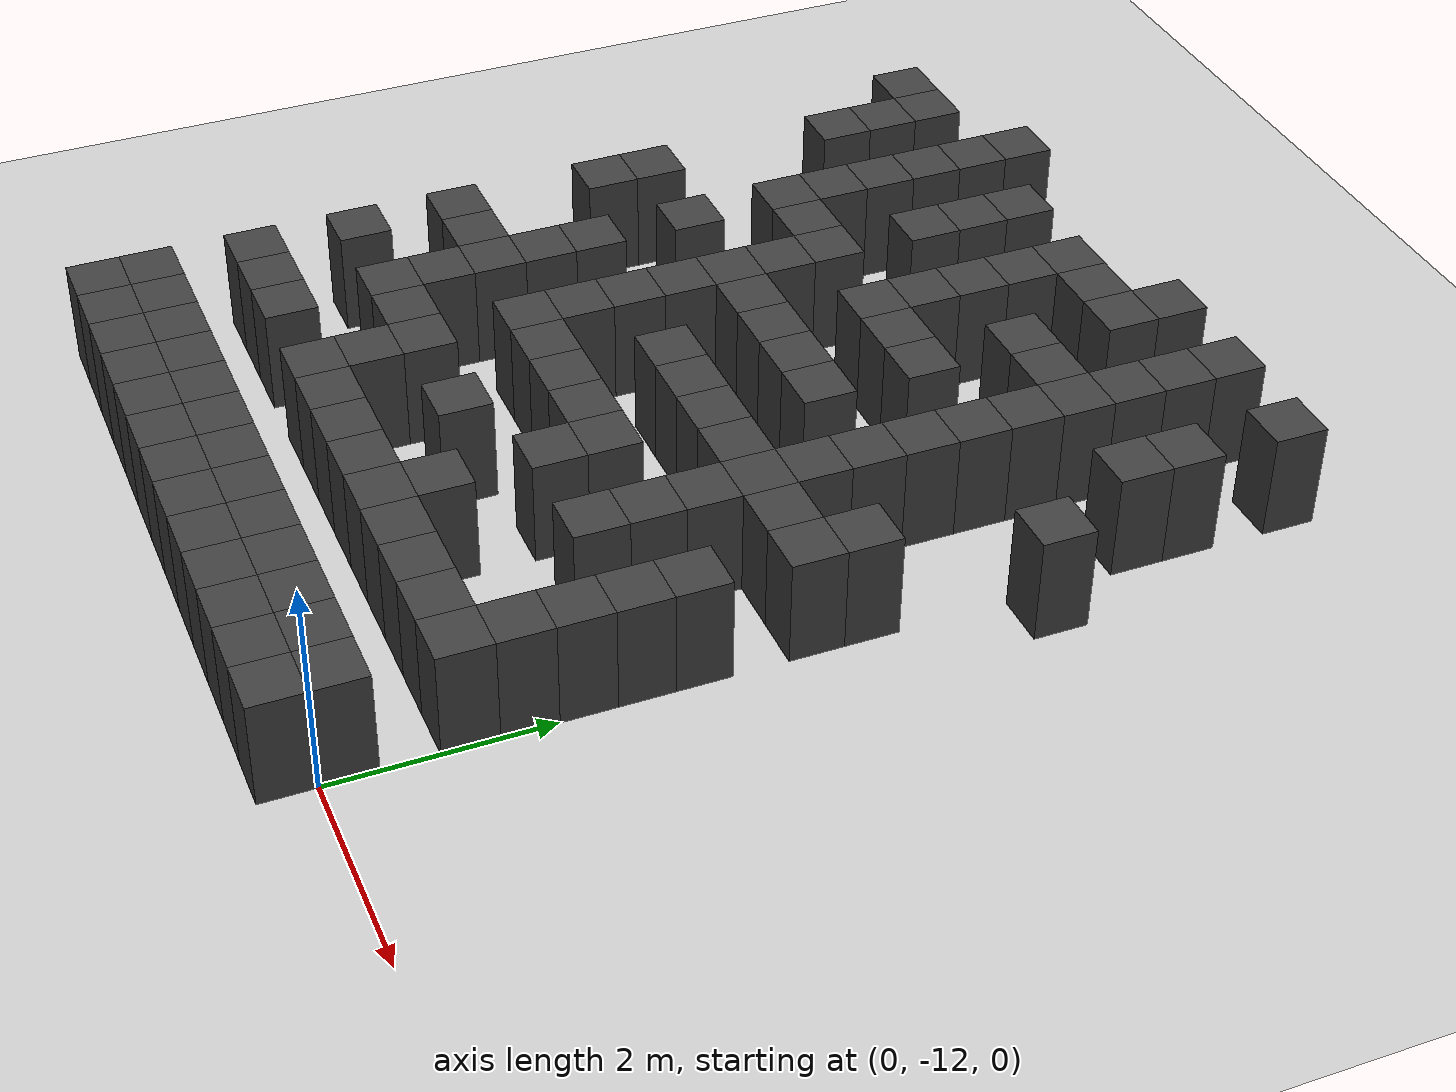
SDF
<sdf version="1.7">
 <world name="map_16588">
  <model name="ground_plane">
   <static>true</static>
   <link name="link">
    <collision name="collision">
     <geometry><plane><normal>0 0 1</normal><size>200 200</size></plane></geometry>
    </collision>
    <visual name="visual">
     <geometry><plane><normal>0 0 1</normal><size>200 200</size></plane></geometry>
     <material><ambient>0.8 0.8 0.8 1</ambient><diffuse>0.8 0.8 0.8 1</diffuse></material>
    </visual>
   </link>
  </model>
  <model name="maze_environment">
   <static>true</static>
   <link name="wall_760">
    <pose>-5.250 -3.250 0.500 0 0 0</pose>
    <collision name="col"><geometry><box><size>0.5 0.5 1.0</size></box></geometry></collision>
    <visual name="vis">
     <geometry><box><size>0.5 0.5 1.0</size></box></geometry>
     <material><ambient>0.15 0.15 0.15 1</ambient><diffuse>0.25 0.25 0.25 1</diffuse></material>
    </visual>
   </link>
   <link name="wall_761">
    <pose>-2.250 -3.250 0.500 0 0 0</pose>
    <collision name="col"><geometry><box><size>0.5 0.5 1.0</size></box></geometry></collision>
    <visual name="vis">
     <geometry><box><size>0.5 0.5 1.0</size></box></geometry>
     <material><ambient>0.15 0.15 0.15 1</ambient><diffuse>0.25 0.25 0.25 1</diffuse></material>
    </visual>
   </link>
   <link name="wall_762">
    <pose>-1.250 -3.250 0.500 0 0 0</pose>
    <collision name="col"><geometry><box><size>0.5 0.5 1.0</size></box></geometry></collision>
    <visual name="vis">
     <geometry><box><size>0.5 0.5 1.0</size></box></geometry>
     <material><ambient>0.15 0.15 0.15 1</ambient><diffuse>0.25 0.25 0.25 1</diffuse></material>
    </visual>
   </link>
   <link name="wall_763">
    <pose>-0.250 -3.250 0.500 0 0 0</pose>
    <collision name="col"><geometry><box><size>0.5 0.5 1.0</size></box></geometry></collision>
    <visual name="vis">
     <geometry><box><size>0.5 0.5 1.0</size></box></geometry>
     <material><ambient>0.15 0.15 0.15 1</ambient><diffuse>0.25 0.25 0.25 1</diffuse></material>
    </visual>
   </link>
   <link name="wall_779">
    <pose>-6.750 -3.750 0.500 0 0 0</pose>
    <collision name="col"><geometry><box><size>0.5 0.5 1.0</size></box></geometry></collision>
    <visual name="vis">
     <geometry><box><size>0.5 0.5 1.0</size></box></geometry>
     <material><ambient>0.15 0.15 0.15 1</ambient><diffuse>0.25 0.25 0.25 1</diffuse></material>
    </visual>
   </link>
   <link name="wall_780">
    <pose>-6.250 -3.750 0.500 0 0 0</pose>
    <collision name="col"><geometry><box><size>0.5 0.5 1.0</size></box></geometry></collision>
    <visual name="vis">
     <geometry><box><size>0.5 0.5 1.0</size></box></geometry>
     <material><ambient>0.15 0.15 0.15 1</ambient><diffuse>0.25 0.25 0.25 1</diffuse></material>
    </visual>
   </link>
   <link name="wall_781">
    <pose>-5.250 -3.750 0.500 0 0 0</pose>
    <collision name="col"><geometry><box><size>0.5 0.5 1.0</size></box></geometry></collision>
    <visual name="vis">
     <geometry><box><size>0.5 0.5 1.0</size></box></geometry>
     <material><ambient>0.15 0.15 0.15 1</ambient><diffuse>0.25 0.25 0.25 1</diffuse></material>
    </visual>
   </link>
   <link name="wall_782">
    <pose>-4.250 -3.750 0.500 0 0 0</pose>
    <collision name="col"><geometry><box><size>0.5 0.5 1.0</size></box></geometry></collision>
    <visual name="vis">
     <geometry><box><size>0.5 0.5 1.0</size></box></geometry>
     <material><ambient>0.15 0.15 0.15 1</ambient><diffuse>0.25 0.25 0.25 1</diffuse></material>
    </visual>
   </link>
   <link name="wall_783">
    <pose>-3.250 -3.750 0.500 0 0 0</pose>
    <collision name="col"><geometry><box><size>0.5 0.5 1.0</size></box></geometry></collision>
    <visual name="vis">
     <geometry><box><size>0.5 0.5 1.0</size></box></geometry>
     <material><ambient>0.15 0.15 0.15 1</ambient><diffuse>0.25 0.25 0.25 1</diffuse></material>
    </visual>
   </link>
   <link name="wall_784">
    <pose>-2.750 -3.750 0.500 0 0 0</pose>
    <collision name="col"><geometry><box><size>0.5 0.5 1.0</size></box></geometry></collision>
    <visual name="vis">
     <geometry><box><size>0.5 0.5 1.0</size></box></geometry>
     <material><ambient>0.15 0.15 0.15 1</ambient><diffuse>0.25 0.25 0.25 1</diffuse></material>
    </visual>
   </link>
   <link name="wall_785">
    <pose>-2.250 -3.750 0.500 0 0 0</pose>
    <collision name="col"><geometry><box><size>0.5 0.5 1.0</size></box></geometry></collision>
    <visual name="vis">
     <geometry><box><size>0.5 0.5 1.0</size></box></geometry>
     <material><ambient>0.15 0.15 0.15 1</ambient><diffuse>0.25 0.25 0.25 1</diffuse></material>
    </visual>
   </link>
   <link name="wall_786">
    <pose>-1.250 -3.750 0.500 0 0 0</pose>
    <collision name="col"><geometry><box><size>0.5 0.5 1.0</size></box></geometry></collision>
    <visual name="vis">
     <geometry><box><size>0.5 0.5 1.0</size></box></geometry>
     <material><ambient>0.15 0.15 0.15 1</ambient><diffuse>0.25 0.25 0.25 1</diffuse></material>
    </visual>
   </link>
   <link name="wall_807">
    <pose>-6.250 -4.250 0.500 0 0 0</pose>
    <collision name="col"><geometry><box><size>0.5 0.5 1.0</size></box></geometry></collision>
    <visual name="vis">
     <geometry><box><size>0.5 0.5 1.0</size></box></geometry>
     <material><ambient>0.15 0.15 0.15 1</ambient><diffuse>0.25 0.25 0.25 1</diffuse></material>
    </visual>
   </link>
   <link name="wall_808">
    <pose>-5.250 -4.250 0.500 0 0 0</pose>
    <collision name="col"><geometry><box><size>0.5 0.5 1.0</size></box></geometry></collision>
    <visual name="vis">
     <geometry><box><size>0.5 0.5 1.0</size></box></geometry>
     <material><ambient>0.15 0.15 0.15 1</ambient><diffuse>0.25 0.25 0.25 1</diffuse></material>
    </visual>
   </link>
   <link name="wall_809">
    <pose>-4.250 -4.250 0.500 0 0 0</pose>
    <collision name="col"><geometry><box><size>0.5 0.5 1.0</size></box></geometry></collision>
    <visual name="vis">
     <geometry><box><size>0.5 0.5 1.0</size></box></geometry>
     <material><ambient>0.15 0.15 0.15 1</ambient><diffuse>0.25 0.25 0.25 1</diffuse></material>
    </visual>
   </link>
   <link name="wall_810">
    <pose>-3.250 -4.250 0.500 0 0 0</pose>
    <collision name="col"><geometry><box><size>0.5 0.5 1.0</size></box></geometry></collision>
    <visual name="vis">
     <geometry><box><size>0.5 0.5 1.0</size></box></geometry>
     <material><ambient>0.15 0.15 0.15 1</ambient><diffuse>0.25 0.25 0.25 1</diffuse></material>
    </visual>
   </link>
   <link name="wall_811">
    <pose>-1.250 -4.250 0.500 0 0 0</pose>
    <collision name="col"><geometry><box><size>0.5 0.5 1.0</size></box></geometry></collision>
    <visual name="vis">
     <geometry><box><size>0.5 0.5 1.0</size></box></geometry>
     <material><ambient>0.15 0.15 0.15 1</ambient><diffuse>0.25 0.25 0.25 1</diffuse></material>
    </visual>
   </link>
   <link name="wall_812">
    <pose>-0.250 -4.250 0.500 0 0 0</pose>
    <collision name="col"><geometry><box><size>0.5 0.5 1.0</size></box></geometry></collision>
    <visual name="vis">
     <geometry><box><size>0.5 0.5 1.0</size></box></geometry>
     <material><ambient>0.15 0.15 0.15 1</ambient><diffuse>0.25 0.25 0.25 1</diffuse></material>
    </visual>
   </link>
   <link name="wall_830">
    <pose>-6.250 -4.750 0.500 0 0 0</pose>
    <collision name="col"><geometry><box><size>0.5 0.5 1.0</size></box></geometry></collision>
    <visual name="vis">
     <geometry><box><size>0.5 0.5 1.0</size></box></geometry>
     <material><ambient>0.15 0.15 0.15 1</ambient><diffuse>0.25 0.25 0.25 1</diffuse></material>
    </visual>
   </link>
   <link name="wall_831">
    <pose>-5.250 -4.750 0.500 0 0 0</pose>
    <collision name="col"><geometry><box><size>0.5 0.5 1.0</size></box></geometry></collision>
    <visual name="vis">
     <geometry><box><size>0.5 0.5 1.0</size></box></geometry>
     <material><ambient>0.15 0.15 0.15 1</ambient><diffuse>0.25 0.25 0.25 1</diffuse></material>
    </visual>
   </link>
   <link name="wall_832">
    <pose>-4.250 -4.750 0.500 0 0 0</pose>
    <collision name="col"><geometry><box><size>0.5 0.5 1.0</size></box></geometry></collision>
    <visual name="vis">
     <geometry><box><size>0.5 0.5 1.0</size></box></geometry>
     <material><ambient>0.15 0.15 0.15 1</ambient><diffuse>0.25 0.25 0.25 1</diffuse></material>
    </visual>
   </link>
   <link name="wall_833">
    <pose>-3.250 -4.750 0.500 0 0 0</pose>
    <collision name="col"><geometry><box><size>0.5 0.5 1.0</size></box></geometry></collision>
    <visual name="vis">
     <geometry><box><size>0.5 0.5 1.0</size></box></geometry>
     <material><ambient>0.15 0.15 0.15 1</ambient><diffuse>0.25 0.25 0.25 1</diffuse></material>
    </visual>
   </link>
   <link name="wall_834">
    <pose>-2.250 -4.750 0.500 0 0 0</pose>
    <collision name="col"><geometry><box><size>0.5 0.5 1.0</size></box></geometry></collision>
    <visual name="vis">
     <geometry><box><size>0.5 0.5 1.0</size></box></geometry>
     <material><ambient>0.15 0.15 0.15 1</ambient><diffuse>0.25 0.25 0.25 1</diffuse></material>
    </visual>
   </link>
   <link name="wall_835">
    <pose>-1.750 -4.750 0.500 0 0 0</pose>
    <collision name="col"><geometry><box><size>0.5 0.5 1.0</size></box></geometry></collision>
    <visual name="vis">
     <geometry><box><size>0.5 0.5 1.0</size></box></geometry>
     <material><ambient>0.15 0.15 0.15 1</ambient><diffuse>0.25 0.25 0.25 1</diffuse></material>
    </visual>
   </link>
   <link name="wall_836">
    <pose>-1.250 -4.750 0.500 0 0 0</pose>
    <collision name="col"><geometry><box><size>0.5 0.5 1.0</size></box></geometry></collision>
    <visual name="vis">
     <geometry><box><size>0.5 0.5 1.0</size></box></geometry>
     <material><ambient>0.15 0.15 0.15 1</ambient><diffuse>0.25 0.25 0.25 1</diffuse></material>
    </visual>
   </link>
   <link name="wall_837">
    <pose>-0.250 -4.750 0.500 0 0 0</pose>
    <collision name="col"><geometry><box><size>0.5 0.5 1.0</size></box></geometry></collision>
    <visual name="vis">
     <geometry><box><size>0.5 0.5 1.0</size></box></geometry>
     <material><ambient>0.15 0.15 0.15 1</ambient><diffuse>0.25 0.25 0.25 1</diffuse></material>
    </visual>
   </link>
   <link name="wall_856">
    <pose>-5.250 -5.250 0.500 0 0 0</pose>
    <collision name="col"><geometry><box><size>0.5 0.5 1.0</size></box></geometry></collision>
    <visual name="vis">
     <geometry><box><size>0.5 0.5 1.0</size></box></geometry>
     <material><ambient>0.15 0.15 0.15 1</ambient><diffuse>0.25 0.25 0.25 1</diffuse></material>
    </visual>
   </link>
   <link name="wall_857">
    <pose>-3.250 -5.250 0.500 0 0 0</pose>
    <collision name="col"><geometry><box><size>0.5 0.5 1.0</size></box></geometry></collision>
    <visual name="vis">
     <geometry><box><size>0.5 0.5 1.0</size></box></geometry>
     <material><ambient>0.15 0.15 0.15 1</ambient><diffuse>0.25 0.25 0.25 1</diffuse></material>
    </visual>
   </link>
   <link name="wall_858">
    <pose>-1.250 -5.250 0.500 0 0 0</pose>
    <collision name="col"><geometry><box><size>0.5 0.5 1.0</size></box></geometry></collision>
    <visual name="vis">
     <geometry><box><size>0.5 0.5 1.0</size></box></geometry>
     <material><ambient>0.15 0.15 0.15 1</ambient><diffuse>0.25 0.25 0.25 1</diffuse></material>
    </visual>
   </link>
   <link name="wall_877">
    <pose>-5.250 -5.750 0.500 0 0 0</pose>
    <collision name="col"><geometry><box><size>0.5 0.5 1.0</size></box></geometry></collision>
    <visual name="vis">
     <geometry><box><size>0.5 0.5 1.0</size></box></geometry>
     <material><ambient>0.15 0.15 0.15 1</ambient><diffuse>0.25 0.25 0.25 1</diffuse></material>
    </visual>
   </link>
   <link name="wall_878">
    <pose>-4.750 -5.750 0.500 0 0 0</pose>
    <collision name="col"><geometry><box><size>0.5 0.5 1.0</size></box></geometry></collision>
    <visual name="vis">
     <geometry><box><size>0.5 0.5 1.0</size></box></geometry>
     <material><ambient>0.15 0.15 0.15 1</ambient><diffuse>0.25 0.25 0.25 1</diffuse></material>
    </visual>
   </link>
   <link name="wall_879">
    <pose>-4.250 -5.750 0.500 0 0 0</pose>
    <collision name="col"><geometry><box><size>0.5 0.5 1.0</size></box></geometry></collision>
    <visual name="vis">
     <geometry><box><size>0.5 0.5 1.0</size></box></geometry>
     <material><ambient>0.15 0.15 0.15 1</ambient><diffuse>0.25 0.25 0.25 1</diffuse></material>
    </visual>
   </link>
   <link name="wall_880">
    <pose>-3.250 -5.750 0.500 0 0 0</pose>
    <collision name="col"><geometry><box><size>0.5 0.5 1.0</size></box></geometry></collision>
    <visual name="vis">
     <geometry><box><size>0.5 0.5 1.0</size></box></geometry>
     <material><ambient>0.15 0.15 0.15 1</ambient><diffuse>0.25 0.25 0.25 1</diffuse></material>
    </visual>
   </link>
   <link name="wall_881">
    <pose>-2.750 -5.750 0.500 0 0 0</pose>
    <collision name="col"><geometry><box><size>0.5 0.5 1.0</size></box></geometry></collision>
    <visual name="vis">
     <geometry><box><size>0.5 0.5 1.0</size></box></geometry>
     <material><ambient>0.15 0.15 0.15 1</ambient><diffuse>0.25 0.25 0.25 1</diffuse></material>
    </visual>
   </link>
   <link name="wall_882">
    <pose>-2.250 -5.750 0.500 0 0 0</pose>
    <collision name="col"><geometry><box><size>0.5 0.5 1.0</size></box></geometry></collision>
    <visual name="vis">
     <geometry><box><size>0.5 0.5 1.0</size></box></geometry>
     <material><ambient>0.15 0.15 0.15 1</ambient><diffuse>0.25 0.25 0.25 1</diffuse></material>
    </visual>
   </link>
   <link name="wall_883">
    <pose>-1.250 -5.750 0.500 0 0 0</pose>
    <collision name="col"><geometry><box><size>0.5 0.5 1.0</size></box></geometry></collision>
    <visual name="vis">
     <geometry><box><size>0.5 0.5 1.0</size></box></geometry>
     <material><ambient>0.15 0.15 0.15 1</ambient><diffuse>0.25 0.25 0.25 1</diffuse></material>
    </visual>
   </link>
   <link name="wall_884">
    <pose>0.250 -5.750 0.500 0 0 0</pose>
    <collision name="col"><geometry><box><size>0.5 0.5 1.0</size></box></geometry></collision>
    <visual name="vis">
     <geometry><box><size>0.5 0.5 1.0</size></box></geometry>
     <material><ambient>0.15 0.15 0.15 1</ambient><diffuse>0.25 0.25 0.25 1</diffuse></material>
    </visual>
   </link>
   <link name="wall_902">
    <pose>-4.250 -6.250 0.500 0 0 0</pose>
    <collision name="col"><geometry><box><size>0.5 0.5 1.0</size></box></geometry></collision>
    <visual name="vis">
     <geometry><box><size>0.5 0.5 1.0</size></box></geometry>
     <material><ambient>0.15 0.15 0.15 1</ambient><diffuse>0.25 0.25 0.25 1</diffuse></material>
    </visual>
   </link>
   <link name="wall_903">
    <pose>-1.250 -6.250 0.500 0 0 0</pose>
    <collision name="col"><geometry><box><size>0.5 0.5 1.0</size></box></geometry></collision>
    <visual name="vis">
     <geometry><box><size>0.5 0.5 1.0</size></box></geometry>
     <material><ambient>0.15 0.15 0.15 1</ambient><diffuse>0.25 0.25 0.25 1</diffuse></material>
    </visual>
   </link>
   <link name="wall_919">
    <pose>-6.250 -6.750 0.500 0 0 0</pose>
    <collision name="col"><geometry><box><size>0.5 0.5 1.0</size></box></geometry></collision>
    <visual name="vis">
     <geometry><box><size>0.5 0.5 1.0</size></box></geometry>
     <material><ambient>0.15 0.15 0.15 1</ambient><diffuse>0.25 0.25 0.25 1</diffuse></material>
    </visual>
   </link>
   <link name="wall_920">
    <pose>-5.250 -6.750 0.500 0 0 0</pose>
    <collision name="col"><geometry><box><size>0.5 0.5 1.0</size></box></geometry></collision>
    <visual name="vis">
     <geometry><box><size>0.5 0.5 1.0</size></box></geometry>
     <material><ambient>0.15 0.15 0.15 1</ambient><diffuse>0.25 0.25 0.25 1</diffuse></material>
    </visual>
   </link>
   <link name="wall_921">
    <pose>-4.250 -6.750 0.500 0 0 0</pose>
    <collision name="col"><geometry><box><size>0.5 0.5 1.0</size></box></geometry></collision>
    <visual name="vis">
     <geometry><box><size>0.5 0.5 1.0</size></box></geometry>
     <material><ambient>0.15 0.15 0.15 1</ambient><diffuse>0.25 0.25 0.25 1</diffuse></material>
    </visual>
   </link>
   <link name="wall_922">
    <pose>-3.750 -6.750 0.500 0 0 0</pose>
    <collision name="col"><geometry><box><size>0.5 0.5 1.0</size></box></geometry></collision>
    <visual name="vis">
     <geometry><box><size>0.5 0.5 1.0</size></box></geometry>
     <material><ambient>0.15 0.15 0.15 1</ambient><diffuse>0.25 0.25 0.25 1</diffuse></material>
    </visual>
   </link>
   <link name="wall_923">
    <pose>-3.250 -6.750 0.500 0 0 0</pose>
    <collision name="col"><geometry><box><size>0.5 0.5 1.0</size></box></geometry></collision>
    <visual name="vis">
     <geometry><box><size>0.5 0.5 1.0</size></box></geometry>
     <material><ambient>0.15 0.15 0.15 1</ambient><diffuse>0.25 0.25 0.25 1</diffuse></material>
    </visual>
   </link>
   <link name="wall_924">
    <pose>-2.750 -6.750 0.500 0 0 0</pose>
    <collision name="col"><geometry><box><size>0.5 0.5 1.0</size></box></geometry></collision>
    <visual name="vis">
     <geometry><box><size>0.5 0.5 1.0</size></box></geometry>
     <material><ambient>0.15 0.15 0.15 1</ambient><diffuse>0.25 0.25 0.25 1</diffuse></material>
    </visual>
   </link>
   <link name="wall_925">
    <pose>-2.250 -6.750 0.500 0 0 0</pose>
    <collision name="col"><geometry><box><size>0.5 0.5 1.0</size></box></geometry></collision>
    <visual name="vis">
     <geometry><box><size>0.5 0.5 1.0</size></box></geometry>
     <material><ambient>0.15 0.15 0.15 1</ambient><diffuse>0.25 0.25 0.25 1</diffuse></material>
    </visual>
   </link>
   <link name="wall_926">
    <pose>-1.250 -6.750 0.500 0 0 0</pose>
    <collision name="col"><geometry><box><size>0.5 0.5 1.0</size></box></geometry></collision>
    <visual name="vis">
     <geometry><box><size>0.5 0.5 1.0</size></box></geometry>
     <material><ambient>0.15 0.15 0.15 1</ambient><diffuse>0.25 0.25 0.25 1</diffuse></material>
    </visual>
   </link>
   <link name="wall_947">
    <pose>-6.250 -7.250 0.500 0 0 0</pose>
    <collision name="col"><geometry><box><size>0.5 0.5 1.0</size></box></geometry></collision>
    <visual name="vis">
     <geometry><box><size>0.5 0.5 1.0</size></box></geometry>
     <material><ambient>0.15 0.15 0.15 1</ambient><diffuse>0.25 0.25 0.25 1</diffuse></material>
    </visual>
   </link>
   <link name="wall_948">
    <pose>-4.250 -7.250 0.500 0 0 0</pose>
    <collision name="col"><geometry><box><size>0.5 0.5 1.0</size></box></geometry></collision>
    <visual name="vis">
     <geometry><box><size>0.5 0.5 1.0</size></box></geometry>
     <material><ambient>0.15 0.15 0.15 1</ambient><diffuse>0.25 0.25 0.25 1</diffuse></material>
    </visual>
   </link>
   <link name="wall_949">
    <pose>-1.250 -7.250 0.500 0 0 0</pose>
    <collision name="col"><geometry><box><size>0.5 0.5 1.0</size></box></geometry></collision>
    <visual name="vis">
     <geometry><box><size>0.5 0.5 1.0</size></box></geometry>
     <material><ambient>0.15 0.15 0.15 1</ambient><diffuse>0.25 0.25 0.25 1</diffuse></material>
    </visual>
   </link>
   <link name="wall_950">
    <pose>-0.250 -7.250 0.500 0 0 0</pose>
    <collision name="col"><geometry><box><size>0.5 0.5 1.0</size></box></geometry></collision>
    <visual name="vis">
     <geometry><box><size>0.5 0.5 1.0</size></box></geometry>
     <material><ambient>0.15 0.15 0.15 1</ambient><diffuse>0.25 0.25 0.25 1</diffuse></material>
    </visual>
   </link>
   <link name="wall_967">
    <pose>-5.250 -7.750 0.500 0 0 0</pose>
    <collision name="col"><geometry><box><size>0.5 0.5 1.0</size></box></geometry></collision>
    <visual name="vis">
     <geometry><box><size>0.5 0.5 1.0</size></box></geometry>
     <material><ambient>0.15 0.15 0.15 1</ambient><diffuse>0.25 0.25 0.25 1</diffuse></material>
    </visual>
   </link>
   <link name="wall_968">
    <pose>-4.250 -7.750 0.500 0 0 0</pose>
    <collision name="col"><geometry><box><size>0.5 0.5 1.0</size></box></geometry></collision>
    <visual name="vis">
     <geometry><box><size>0.5 0.5 1.0</size></box></geometry>
     <material><ambient>0.15 0.15 0.15 1</ambient><diffuse>0.25 0.25 0.25 1</diffuse></material>
    </visual>
   </link>
   <link name="wall_969">
    <pose>-3.250 -7.750 0.500 0 0 0</pose>
    <collision name="col"><geometry><box><size>0.5 0.5 1.0</size></box></geometry></collision>
    <visual name="vis">
     <geometry><box><size>0.5 0.5 1.0</size></box></geometry>
     <material><ambient>0.15 0.15 0.15 1</ambient><diffuse>0.25 0.25 0.25 1</diffuse></material>
    </visual>
   </link>
   <link name="wall_970">
    <pose>-2.750 -7.750 0.500 0 0 0</pose>
    <collision name="col"><geometry><box><size>0.5 0.5 1.0</size></box></geometry></collision>
    <visual name="vis">
     <geometry><box><size>0.5 0.5 1.0</size></box></geometry>
     <material><ambient>0.15 0.15 0.15 1</ambient><diffuse>0.25 0.25 0.25 1</diffuse></material>
    </visual>
   </link>
   <link name="wall_971">
    <pose>-2.250 -7.750 0.500 0 0 0</pose>
    <collision name="col"><geometry><box><size>0.5 0.5 1.0</size></box></geometry></collision>
    <visual name="vis">
     <geometry><box><size>0.5 0.5 1.0</size></box></geometry>
     <material><ambient>0.15 0.15 0.15 1</ambient><diffuse>0.25 0.25 0.25 1</diffuse></material>
    </visual>
   </link>
   <link name="wall_972">
    <pose>-1.750 -7.750 0.500 0 0 0</pose>
    <collision name="col"><geometry><box><size>0.5 0.5 1.0</size></box></geometry></collision>
    <visual name="vis">
     <geometry><box><size>0.5 0.5 1.0</size></box></geometry>
     <material><ambient>0.15 0.15 0.15 1</ambient><diffuse>0.25 0.25 0.25 1</diffuse></material>
    </visual>
   </link>
   <link name="wall_973">
    <pose>-1.250 -7.750 0.500 0 0 0</pose>
    <collision name="col"><geometry><box><size>0.5 0.5 1.0</size></box></geometry></collision>
    <visual name="vis">
     <geometry><box><size>0.5 0.5 1.0</size></box></geometry>
     <material><ambient>0.15 0.15 0.15 1</ambient><diffuse>0.25 0.25 0.25 1</diffuse></material>
    </visual>
   </link>
   <link name="wall_974">
    <pose>-0.750 -7.750 0.500 0 0 0</pose>
    <collision name="col"><geometry><box><size>0.5 0.5 1.0</size></box></geometry></collision>
    <visual name="vis">
     <geometry><box><size>0.5 0.5 1.0</size></box></geometry>
     <material><ambient>0.15 0.15 0.15 1</ambient><diffuse>0.25 0.25 0.25 1</diffuse></material>
    </visual>
   </link>
   <link name="wall_975">
    <pose>-0.250 -7.750 0.500 0 0 0</pose>
    <collision name="col"><geometry><box><size>0.5 0.5 1.0</size></box></geometry></collision>
    <visual name="vis">
     <geometry><box><size>0.5 0.5 1.0</size></box></geometry>
     <material><ambient>0.15 0.15 0.15 1</ambient><diffuse>0.25 0.25 0.25 1</diffuse></material>
    </visual>
   </link>
   <link name="wall_999">
    <pose>-5.250 -8.250 0.500 0 0 0</pose>
    <collision name="col"><geometry><box><size>0.5 0.5 1.0</size></box></geometry></collision>
    <visual name="vis">
     <geometry><box><size>0.5 0.5 1.0</size></box></geometry>
     <material><ambient>0.15 0.15 0.15 1</ambient><diffuse>0.25 0.25 0.25 1</diffuse></material>
    </visual>
   </link>
   <link name="wall_1000">
    <pose>-4.250 -8.250 0.500 0 0 0</pose>
    <collision name="col"><geometry><box><size>0.5 0.5 1.0</size></box></geometry></collision>
    <visual name="vis">
     <geometry><box><size>0.5 0.5 1.0</size></box></geometry>
     <material><ambient>0.15 0.15 0.15 1</ambient><diffuse>0.25 0.25 0.25 1</diffuse></material>
    </visual>
   </link>
   <link name="wall_1001">
    <pose>-1.250 -8.250 0.500 0 0 0</pose>
    <collision name="col"><geometry><box><size>0.5 0.5 1.0</size></box></geometry></collision>
    <visual name="vis">
     <geometry><box><size>0.5 0.5 1.0</size></box></geometry>
     <material><ambient>0.15 0.15 0.15 1</ambient><diffuse>0.25 0.25 0.25 1</diffuse></material>
    </visual>
   </link>
   <link name="wall_1014">
    <pose>-6.250 -8.750 0.500 0 0 0</pose>
    <collision name="col"><geometry><box><size>0.5 0.5 1.0</size></box></geometry></collision>
    <visual name="vis">
     <geometry><box><size>0.5 0.5 1.0</size></box></geometry>
     <material><ambient>0.15 0.15 0.15 1</ambient><diffuse>0.25 0.25 0.25 1</diffuse></material>
    </visual>
   </link>
   <link name="wall_1015">
    <pose>-5.750 -8.750 0.500 0 0 0</pose>
    <collision name="col"><geometry><box><size>0.5 0.5 1.0</size></box></geometry></collision>
    <visual name="vis">
     <geometry><box><size>0.5 0.5 1.0</size></box></geometry>
     <material><ambient>0.15 0.15 0.15 1</ambient><diffuse>0.25 0.25 0.25 1</diffuse></material>
    </visual>
   </link>
   <link name="wall_1016">
    <pose>-5.250 -8.750 0.500 0 0 0</pose>
    <collision name="col"><geometry><box><size>0.5 0.5 1.0</size></box></geometry></collision>
    <visual name="vis">
     <geometry><box><size>0.5 0.5 1.0</size></box></geometry>
     <material><ambient>0.15 0.15 0.15 1</ambient><diffuse>0.25 0.25 0.25 1</diffuse></material>
    </visual>
   </link>
   <link name="wall_1017">
    <pose>-4.250 -8.750 0.500 0 0 0</pose>
    <collision name="col"><geometry><box><size>0.5 0.5 1.0</size></box></geometry></collision>
    <visual name="vis">
     <geometry><box><size>0.5 0.5 1.0</size></box></geometry>
     <material><ambient>0.15 0.15 0.15 1</ambient><diffuse>0.25 0.25 0.25 1</diffuse></material>
    </visual>
   </link>
   <link name="wall_1018">
    <pose>-3.750 -8.750 0.500 0 0 0</pose>
    <collision name="col"><geometry><box><size>0.5 0.5 1.0</size></box></geometry></collision>
    <visual name="vis">
     <geometry><box><size>0.5 0.5 1.0</size></box></geometry>
     <material><ambient>0.15 0.15 0.15 1</ambient><diffuse>0.25 0.25 0.25 1</diffuse></material>
    </visual>
   </link>
   <link name="wall_1019">
    <pose>-3.250 -8.750 0.500 0 0 0</pose>
    <collision name="col"><geometry><box><size>0.5 0.5 1.0</size></box></geometry></collision>
    <visual name="vis">
     <geometry><box><size>0.5 0.5 1.0</size></box></geometry>
     <material><ambient>0.15 0.15 0.15 1</ambient><diffuse>0.25 0.25 0.25 1</diffuse></material>
    </visual>
   </link>
   <link name="wall_1020">
    <pose>-2.750 -8.750 0.500 0 0 0</pose>
    <collision name="col"><geometry><box><size>0.5 0.5 1.0</size></box></geometry></collision>
    <visual name="vis">
     <geometry><box><size>0.5 0.5 1.0</size></box></geometry>
     <material><ambient>0.15 0.15 0.15 1</ambient><diffuse>0.25 0.25 0.25 1</diffuse></material>
    </visual>
   </link>
   <link name="wall_1021">
    <pose>-2.250 -8.750 0.500 0 0 0</pose>
    <collision name="col"><geometry><box><size>0.5 0.5 1.0</size></box></geometry></collision>
    <visual name="vis">
     <geometry><box><size>0.5 0.5 1.0</size></box></geometry>
     <material><ambient>0.15 0.15 0.15 1</ambient><diffuse>0.25 0.25 0.25 1</diffuse></material>
    </visual>
   </link>
   <link name="wall_1022">
    <pose>-1.250 -8.750 0.500 0 0 0</pose>
    <collision name="col"><geometry><box><size>0.5 0.5 1.0</size></box></geometry></collision>
    <visual name="vis">
     <geometry><box><size>0.5 0.5 1.0</size></box></geometry>
     <material><ambient>0.15 0.15 0.15 1</ambient><diffuse>0.25 0.25 0.25 1</diffuse></material>
    </visual>
   </link>
   <link name="wall_1023">
    <pose>-0.250 -8.750 0.500 0 0 0</pose>
    <collision name="col"><geometry><box><size>0.5 0.5 1.0</size></box></geometry></collision>
    <visual name="vis">
     <geometry><box><size>0.5 0.5 1.0</size></box></geometry>
     <material><ambient>0.15 0.15 0.15 1</ambient><diffuse>0.25 0.25 0.25 1</diffuse></material>
    </visual>
   </link>
   <link name="wall_1048">
    <pose>-5.250 -9.250 0.500 0 0 0</pose>
    <collision name="col"><geometry><box><size>0.5 0.5 1.0</size></box></geometry></collision>
    <visual name="vis">
     <geometry><box><size>0.5 0.5 1.0</size></box></geometry>
     <material><ambient>0.15 0.15 0.15 1</ambient><diffuse>0.25 0.25 0.25 1</diffuse></material>
    </visual>
   </link>
   <link name="wall_1049">
    <pose>-2.250 -9.250 0.500 0 0 0</pose>
    <collision name="col"><geometry><box><size>0.5 0.5 1.0</size></box></geometry></collision>
    <visual name="vis">
     <geometry><box><size>0.5 0.5 1.0</size></box></geometry>
     <material><ambient>0.15 0.15 0.15 1</ambient><diffuse>0.25 0.25 0.25 1</diffuse></material>
    </visual>
   </link>
   <link name="wall_1050">
    <pose>-1.250 -9.250 0.500 0 0 0</pose>
    <collision name="col"><geometry><box><size>0.5 0.5 1.0</size></box></geometry></collision>
    <visual name="vis">
     <geometry><box><size>0.5 0.5 1.0</size></box></geometry>
     <material><ambient>0.15 0.15 0.15 1</ambient><diffuse>0.25 0.25 0.25 1</diffuse></material>
    </visual>
   </link>
   <link name="wall_1051">
    <pose>-0.250 -9.250 0.500 0 0 0</pose>
    <collision name="col"><geometry><box><size>0.5 0.5 1.0</size></box></geometry></collision>
    <visual name="vis">
     <geometry><box><size>0.5 0.5 1.0</size></box></geometry>
     <material><ambient>0.15 0.15 0.15 1</ambient><diffuse>0.25 0.25 0.25 1</diffuse></material>
    </visual>
   </link>
   <link name="wall_1069">
    <pose>-6.250 -9.750 0.500 0 0 0</pose>
    <collision name="col"><geometry><box><size>0.5 0.5 1.0</size></box></geometry></collision>
    <visual name="vis">
     <geometry><box><size>0.5 0.5 1.0</size></box></geometry>
     <material><ambient>0.15 0.15 0.15 1</ambient><diffuse>0.25 0.25 0.25 1</diffuse></material>
    </visual>
   </link>
   <link name="wall_1070">
    <pose>-5.250 -9.750 0.500 0 0 0</pose>
    <collision name="col"><geometry><box><size>0.5 0.5 1.0</size></box></geometry></collision>
    <visual name="vis">
     <geometry><box><size>0.5 0.5 1.0</size></box></geometry>
     <material><ambient>0.15 0.15 0.15 1</ambient><diffuse>0.25 0.25 0.25 1</diffuse></material>
    </visual>
   </link>
   <link name="wall_1071">
    <pose>-4.750 -9.750 0.500 0 0 0</pose>
    <collision name="col"><geometry><box><size>0.5 0.5 1.0</size></box></geometry></collision>
    <visual name="vis">
     <geometry><box><size>0.5 0.5 1.0</size></box></geometry>
     <material><ambient>0.15 0.15 0.15 1</ambient><diffuse>0.25 0.25 0.25 1</diffuse></material>
    </visual>
   </link>
   <link name="wall_1072">
    <pose>-4.250 -9.750 0.500 0 0 0</pose>
    <collision name="col"><geometry><box><size>0.5 0.5 1.0</size></box></geometry></collision>
    <visual name="vis">
     <geometry><box><size>0.5 0.5 1.0</size></box></geometry>
     <material><ambient>0.15 0.15 0.15 1</ambient><diffuse>0.25 0.25 0.25 1</diffuse></material>
    </visual>
   </link>
   <link name="wall_1073">
    <pose>-3.250 -9.750 0.500 0 0 0</pose>
    <collision name="col"><geometry><box><size>0.5 0.5 1.0</size></box></geometry></collision>
    <visual name="vis">
     <geometry><box><size>0.5 0.5 1.0</size></box></geometry>
     <material><ambient>0.15 0.15 0.15 1</ambient><diffuse>0.25 0.25 0.25 1</diffuse></material>
    </visual>
   </link>
   <link name="wall_1074">
    <pose>-0.250 -9.750 0.500 0 0 0</pose>
    <collision name="col"><geometry><box><size>0.5 0.5 1.0</size></box></geometry></collision>
    <visual name="vis">
     <geometry><box><size>0.5 0.5 1.0</size></box></geometry>
     <material><ambient>0.15 0.15 0.15 1</ambient><diffuse>0.25 0.25 0.25 1</diffuse></material>
    </visual>
   </link>
   <link name="wall_1095">
    <pose>-4.250 -10.250 0.500 0 0 0</pose>
    <collision name="col"><geometry><box><size>0.5 0.5 1.0</size></box></geometry></collision>
    <visual name="vis">
     <geometry><box><size>0.5 0.5 1.0</size></box></geometry>
     <material><ambient>0.15 0.15 0.15 1</ambient><diffuse>0.25 0.25 0.25 1</diffuse></material>
    </visual>
   </link>
   <link name="wall_1096">
    <pose>-2.250 -10.250 0.500 0 0 0</pose>
    <collision name="col"><geometry><box><size>0.5 0.5 1.0</size></box></geometry></collision>
    <visual name="vis">
     <geometry><box><size>0.5 0.5 1.0</size></box></geometry>
     <material><ambient>0.15 0.15 0.15 1</ambient><diffuse>0.25 0.25 0.25 1</diffuse></material>
    </visual>
   </link>
   <link name="wall_1097">
    <pose>-0.250 -10.250 0.500 0 0 0</pose>
    <collision name="col"><geometry><box><size>0.5 0.5 1.0</size></box></geometry></collision>
    <visual name="vis">
     <geometry><box><size>0.5 0.5 1.0</size></box></geometry>
     <material><ambient>0.15 0.15 0.15 1</ambient><diffuse>0.25 0.25 0.25 1</diffuse></material>
    </visual>
   </link>
   <link name="wall_1112">
    <pose>-6.250 -10.750 0.500 0 0 0</pose>
    <collision name="col"><geometry><box><size>0.5 0.5 1.0</size></box></geometry></collision>
    <visual name="vis">
     <geometry><box><size>0.5 0.5 1.0</size></box></geometry>
     <material><ambient>0.15 0.15 0.15 1</ambient><diffuse>0.25 0.25 0.25 1</diffuse></material>
    </visual>
   </link>
   <link name="wall_1113">
    <pose>-5.750 -10.750 0.500 0 0 0</pose>
    <collision name="col"><geometry><box><size>0.5 0.5 1.0</size></box></geometry></collision>
    <visual name="vis">
     <geometry><box><size>0.5 0.5 1.0</size></box></geometry>
     <material><ambient>0.15 0.15 0.15 1</ambient><diffuse>0.25 0.25 0.25 1</diffuse></material>
    </visual>
   </link>
   <link name="wall_1114">
    <pose>-5.250 -10.750 0.500 0 0 0</pose>
    <collision name="col"><geometry><box><size>0.5 0.5 1.0</size></box></geometry></collision>
    <visual name="vis">
     <geometry><box><size>0.5 0.5 1.0</size></box></geometry>
     <material><ambient>0.15 0.15 0.15 1</ambient><diffuse>0.25 0.25 0.25 1</diffuse></material>
    </visual>
   </link>
   <link name="wall_1115">
    <pose>-4.250 -10.750 0.500 0 0 0</pose>
    <collision name="col"><geometry><box><size>0.5 0.5 1.0</size></box></geometry></collision>
    <visual name="vis">
     <geometry><box><size>0.5 0.5 1.0</size></box></geometry>
     <material><ambient>0.15 0.15 0.15 1</ambient><diffuse>0.25 0.25 0.25 1</diffuse></material>
    </visual>
   </link>
   <link name="wall_1116">
    <pose>-3.750 -10.750 0.500 0 0 0</pose>
    <collision name="col"><geometry><box><size>0.5 0.5 1.0</size></box></geometry></collision>
    <visual name="vis">
     <geometry><box><size>0.5 0.5 1.0</size></box></geometry>
     <material><ambient>0.15 0.15 0.15 1</ambient><diffuse>0.25 0.25 0.25 1</diffuse></material>
    </visual>
   </link>
   <link name="wall_1117">
    <pose>-3.250 -10.750 0.500 0 0 0</pose>
    <collision name="col"><geometry><box><size>0.5 0.5 1.0</size></box></geometry></collision>
    <visual name="vis">
     <geometry><box><size>0.5 0.5 1.0</size></box></geometry>
     <material><ambient>0.15 0.15 0.15 1</ambient><diffuse>0.25 0.25 0.25 1</diffuse></material>
    </visual>
   </link>
   <link name="wall_1118">
    <pose>-2.750 -10.750 0.500 0 0 0</pose>
    <collision name="col"><geometry><box><size>0.5 0.5 1.0</size></box></geometry></collision>
    <visual name="vis">
     <geometry><box><size>0.5 0.5 1.0</size></box></geometry>
     <material><ambient>0.15 0.15 0.15 1</ambient><diffuse>0.25 0.25 0.25 1</diffuse></material>
    </visual>
   </link>
   <link name="wall_1119">
    <pose>-2.250 -10.750 0.500 0 0 0</pose>
    <collision name="col"><geometry><box><size>0.5 0.5 1.0</size></box></geometry></collision>
    <visual name="vis">
     <geometry><box><size>0.5 0.5 1.0</size></box></geometry>
     <material><ambient>0.15 0.15 0.15 1</ambient><diffuse>0.25 0.25 0.25 1</diffuse></material>
    </visual>
   </link>
   <link name="wall_1120">
    <pose>-1.750 -10.750 0.500 0 0 0</pose>
    <collision name="col"><geometry><box><size>0.5 0.5 1.0</size></box></geometry></collision>
    <visual name="vis">
     <geometry><box><size>0.5 0.5 1.0</size></box></geometry>
     <material><ambient>0.15 0.15 0.15 1</ambient><diffuse>0.25 0.25 0.25 1</diffuse></material>
    </visual>
   </link>
   <link name="wall_1121">
    <pose>-1.250 -10.750 0.500 0 0 0</pose>
    <collision name="col"><geometry><box><size>0.5 0.5 1.0</size></box></geometry></collision>
    <visual name="vis">
     <geometry><box><size>0.5 0.5 1.0</size></box></geometry>
     <material><ambient>0.15 0.15 0.15 1</ambient><diffuse>0.25 0.25 0.25 1</diffuse></material>
    </visual>
   </link>
   <link name="wall_1122">
    <pose>-0.750 -10.750 0.500 0 0 0</pose>
    <collision name="col"><geometry><box><size>0.5 0.5 1.0</size></box></geometry></collision>
    <visual name="vis">
     <geometry><box><size>0.5 0.5 1.0</size></box></geometry>
     <material><ambient>0.15 0.15 0.15 1</ambient><diffuse>0.25 0.25 0.25 1</diffuse></material>
    </visual>
   </link>
   <link name="wall_1123">
    <pose>-0.250 -10.750 0.500 0 0 0</pose>
    <collision name="col"><geometry><box><size>0.5 0.5 1.0</size></box></geometry></collision>
    <visual name="vis">
     <geometry><box><size>0.5 0.5 1.0</size></box></geometry>
     <material><ambient>0.15 0.15 0.15 1</ambient><diffuse>0.25 0.25 0.25 1</diffuse></material>
    </visual>
   </link>
   <link name="wall_1156">
    <pose>-6.250 -11.750 0.500 0 0 0</pose>
    <collision name="col"><geometry><box><size>0.5 0.5 1.0</size></box></geometry></collision>
    <visual name="vis">
     <geometry><box><size>0.5 0.5 1.0</size></box></geometry>
     <material><ambient>0.15 0.15 0.15 1</ambient><diffuse>0.25 0.25 0.25 1</diffuse></material>
    </visual>
   </link>
   <link name="wall_1157">
    <pose>-5.750 -11.750 0.500 0 0 0</pose>
    <collision name="col"><geometry><box><size>0.5 0.5 1.0</size></box></geometry></collision>
    <visual name="vis">
     <geometry><box><size>0.5 0.5 1.0</size></box></geometry>
     <material><ambient>0.15 0.15 0.15 1</ambient><diffuse>0.25 0.25 0.25 1</diffuse></material>
    </visual>
   </link>
   <link name="wall_1158">
    <pose>-5.250 -11.750 0.500 0 0 0</pose>
    <collision name="col"><geometry><box><size>0.5 0.5 1.0</size></box></geometry></collision>
    <visual name="vis">
     <geometry><box><size>0.5 0.5 1.0</size></box></geometry>
     <material><ambient>0.15 0.15 0.15 1</ambient><diffuse>0.25 0.25 0.25 1</diffuse></material>
    </visual>
   </link>
   <link name="wall_1159">
    <pose>-4.750 -11.750 0.500 0 0 0</pose>
    <collision name="col"><geometry><box><size>0.5 0.5 1.0</size></box></geometry></collision>
    <visual name="vis">
     <geometry><box><size>0.5 0.5 1.0</size></box></geometry>
     <material><ambient>0.15 0.15 0.15 1</ambient><diffuse>0.25 0.25 0.25 1</diffuse></material>
    </visual>
   </link>
   <link name="wall_1160">
    <pose>-4.250 -11.750 0.500 0 0 0</pose>
    <collision name="col"><geometry><box><size>0.5 0.5 1.0</size></box></geometry></collision>
    <visual name="vis">
     <geometry><box><size>0.5 0.5 1.0</size></box></geometry>
     <material><ambient>0.15 0.15 0.15 1</ambient><diffuse>0.25 0.25 0.25 1</diffuse></material>
    </visual>
   </link>
   <link name="wall_1161">
    <pose>-3.750 -11.750 0.500 0 0 0</pose>
    <collision name="col"><geometry><box><size>0.5 0.5 1.0</size></box></geometry></collision>
    <visual name="vis">
     <geometry><box><size>0.5 0.5 1.0</size></box></geometry>
     <material><ambient>0.15 0.15 0.15 1</ambient><diffuse>0.25 0.25 0.25 1</diffuse></material>
    </visual>
   </link>
   <link name="wall_1162">
    <pose>-3.250 -11.750 0.500 0 0 0</pose>
    <collision name="col"><geometry><box><size>0.5 0.5 1.0</size></box></geometry></collision>
    <visual name="vis">
     <geometry><box><size>0.5 0.5 1.0</size></box></geometry>
     <material><ambient>0.15 0.15 0.15 1</ambient><diffuse>0.25 0.25 0.25 1</diffuse></material>
    </visual>
   </link>
   <link name="wall_1163">
    <pose>-2.750 -11.750 0.500 0 0 0</pose>
    <collision name="col"><geometry><box><size>0.5 0.5 1.0</size></box></geometry></collision>
    <visual name="vis">
     <geometry><box><size>0.5 0.5 1.0</size></box></geometry>
     <material><ambient>0.15 0.15 0.15 1</ambient><diffuse>0.25 0.25 0.25 1</diffuse></material>
    </visual>
   </link>
   <link name="wall_1164">
    <pose>-2.250 -11.750 0.500 0 0 0</pose>
    <collision name="col"><geometry><box><size>0.5 0.5 1.0</size></box></geometry></collision>
    <visual name="vis">
     <geometry><box><size>0.5 0.5 1.0</size></box></geometry>
     <material><ambient>0.15 0.15 0.15 1</ambient><diffuse>0.25 0.25 0.25 1</diffuse></material>
    </visual>
   </link>
   <link name="wall_1165">
    <pose>-1.750 -11.750 0.500 0 0 0</pose>
    <collision name="col"><geometry><box><size>0.5 0.5 1.0</size></box></geometry></collision>
    <visual name="vis">
     <geometry><box><size>0.5 0.5 1.0</size></box></geometry>
     <material><ambient>0.15 0.15 0.15 1</ambient><diffuse>0.25 0.25 0.25 1</diffuse></material>
    </visual>
   </link>
   <link name="wall_1166">
    <pose>-1.250 -11.750 0.500 0 0 0</pose>
    <collision name="col"><geometry><box><size>0.5 0.5 1.0</size></box></geometry></collision>
    <visual name="vis">
     <geometry><box><size>0.5 0.5 1.0</size></box></geometry>
     <material><ambient>0.15 0.15 0.15 1</ambient><diffuse>0.25 0.25 0.25 1</diffuse></material>
    </visual>
   </link>
   <link name="wall_1167">
    <pose>-0.750 -11.750 0.500 0 0 0</pose>
    <collision name="col"><geometry><box><size>0.5 0.5 1.0</size></box></geometry></collision>
    <visual name="vis">
     <geometry><box><size>0.5 0.5 1.0</size></box></geometry>
     <material><ambient>0.15 0.15 0.15 1</ambient><diffuse>0.25 0.25 0.25 1</diffuse></material>
    </visual>
   </link>
   <link name="wall_1168">
    <pose>-0.250 -11.750 0.500 0 0 0</pose>
    <collision name="col"><geometry><box><size>0.5 0.5 1.0</size></box></geometry></collision>
    <visual name="vis">
     <geometry><box><size>0.5 0.5 1.0</size></box></geometry>
     <material><ambient>0.15 0.15 0.15 1</ambient><diffuse>0.25 0.25 0.25 1</diffuse></material>
    </visual>
   </link>
   <link name="wall_1204">
    <pose>-6.250 -12.250 0.500 0 0 0</pose>
    <collision name="col"><geometry><box><size>0.5 0.5 1.0</size></box></geometry></collision>
    <visual name="vis">
     <geometry><box><size>0.5 0.5 1.0</size></box></geometry>
     <material><ambient>0.15 0.15 0.15 1</ambient><diffuse>0.25 0.25 0.25 1</diffuse></material>
    </visual>
   </link>
   <link name="wall_1205">
    <pose>-5.750 -12.250 0.500 0 0 0</pose>
    <collision name="col"><geometry><box><size>0.5 0.5 1.0</size></box></geometry></collision>
    <visual name="vis">
     <geometry><box><size>0.5 0.5 1.0</size></box></geometry>
     <material><ambient>0.15 0.15 0.15 1</ambient><diffuse>0.25 0.25 0.25 1</diffuse></material>
    </visual>
   </link>
   <link name="wall_1206">
    <pose>-5.250 -12.250 0.500 0 0 0</pose>
    <collision name="col"><geometry><box><size>0.5 0.5 1.0</size></box></geometry></collision>
    <visual name="vis">
     <geometry><box><size>0.5 0.5 1.0</size></box></geometry>
     <material><ambient>0.15 0.15 0.15 1</ambient><diffuse>0.25 0.25 0.25 1</diffuse></material>
    </visual>
   </link>
   <link name="wall_1207">
    <pose>-4.750 -12.250 0.500 0 0 0</pose>
    <collision name="col"><geometry><box><size>0.5 0.5 1.0</size></box></geometry></collision>
    <visual name="vis">
     <geometry><box><size>0.5 0.5 1.0</size></box></geometry>
     <material><ambient>0.15 0.15 0.15 1</ambient><diffuse>0.25 0.25 0.25 1</diffuse></material>
    </visual>
   </link>
   <link name="wall_1208">
    <pose>-4.250 -12.250 0.500 0 0 0</pose>
    <collision name="col"><geometry><box><size>0.5 0.5 1.0</size></box></geometry></collision>
    <visual name="vis">
     <geometry><box><size>0.5 0.5 1.0</size></box></geometry>
     <material><ambient>0.15 0.15 0.15 1</ambient><diffuse>0.25 0.25 0.25 1</diffuse></material>
    </visual>
   </link>
   <link name="wall_1209">
    <pose>-3.750 -12.250 0.500 0 0 0</pose>
    <collision name="col"><geometry><box><size>0.5 0.5 1.0</size></box></geometry></collision>
    <visual name="vis">
     <geometry><box><size>0.5 0.5 1.0</size></box></geometry>
     <material><ambient>0.15 0.15 0.15 1</ambient><diffuse>0.25 0.25 0.25 1</diffuse></material>
    </visual>
   </link>
   <link name="wall_1210">
    <pose>-3.250 -12.250 0.500 0 0 0</pose>
    <collision name="col"><geometry><box><size>0.5 0.5 1.0</size></box></geometry></collision>
    <visual name="vis">
     <geometry><box><size>0.5 0.5 1.0</size></box></geometry>
     <material><ambient>0.15 0.15 0.15 1</ambient><diffuse>0.25 0.25 0.25 1</diffuse></material>
    </visual>
   </link>
   <link name="wall_1211">
    <pose>-2.750 -12.250 0.500 0 0 0</pose>
    <collision name="col"><geometry><box><size>0.5 0.5 1.0</size></box></geometry></collision>
    <visual name="vis">
     <geometry><box><size>0.5 0.5 1.0</size></box></geometry>
     <material><ambient>0.15 0.15 0.15 1</ambient><diffuse>0.25 0.25 0.25 1</diffuse></material>
    </visual>
   </link>
   <link name="wall_1212">
    <pose>-2.250 -12.250 0.500 0 0 0</pose>
    <collision name="col"><geometry><box><size>0.5 0.5 1.0</size></box></geometry></collision>
    <visual name="vis">
     <geometry><box><size>0.5 0.5 1.0</size></box></geometry>
     <material><ambient>0.15 0.15 0.15 1</ambient><diffuse>0.25 0.25 0.25 1</diffuse></material>
    </visual>
   </link>
   <link name="wall_1213">
    <pose>-1.750 -12.250 0.500 0 0 0</pose>
    <collision name="col"><geometry><box><size>0.5 0.5 1.0</size></box></geometry></collision>
    <visual name="vis">
     <geometry><box><size>0.5 0.5 1.0</size></box></geometry>
     <material><ambient>0.15 0.15 0.15 1</ambient><diffuse>0.25 0.25 0.25 1</diffuse></material>
    </visual>
   </link>
   <link name="wall_1214">
    <pose>-1.250 -12.250 0.500 0 0 0</pose>
    <collision name="col"><geometry><box><size>0.5 0.5 1.0</size></box></geometry></collision>
    <visual name="vis">
     <geometry><box><size>0.5 0.5 1.0</size></box></geometry>
     <material><ambient>0.15 0.15 0.15 1</ambient><diffuse>0.25 0.25 0.25 1</diffuse></material>
    </visual>
   </link>
   <link name="wall_1215">
    <pose>-0.750 -12.250 0.500 0 0 0</pose>
    <collision name="col"><geometry><box><size>0.5 0.5 1.0</size></box></geometry></collision>
    <visual name="vis">
     <geometry><box><size>0.5 0.5 1.0</size></box></geometry>
     <material><ambient>0.15 0.15 0.15 1</ambient><diffuse>0.25 0.25 0.25 1</diffuse></material>
    </visual>
   </link>
   <link name="wall_1216">
    <pose>-0.250 -12.250 0.500 0 0 0</pose>
    <collision name="col"><geometry><box><size>0.5 0.5 1.0</size></box></geometry></collision>
    <visual name="vis">
     <geometry><box><size>0.5 0.5 1.0</size></box></geometry>
     <material><ambient>0.15 0.15 0.15 1</ambient><diffuse>0.25 0.25 0.25 1</diffuse></material>
    </visual>
   </link>
  </model>
 </world>
</sdf>
